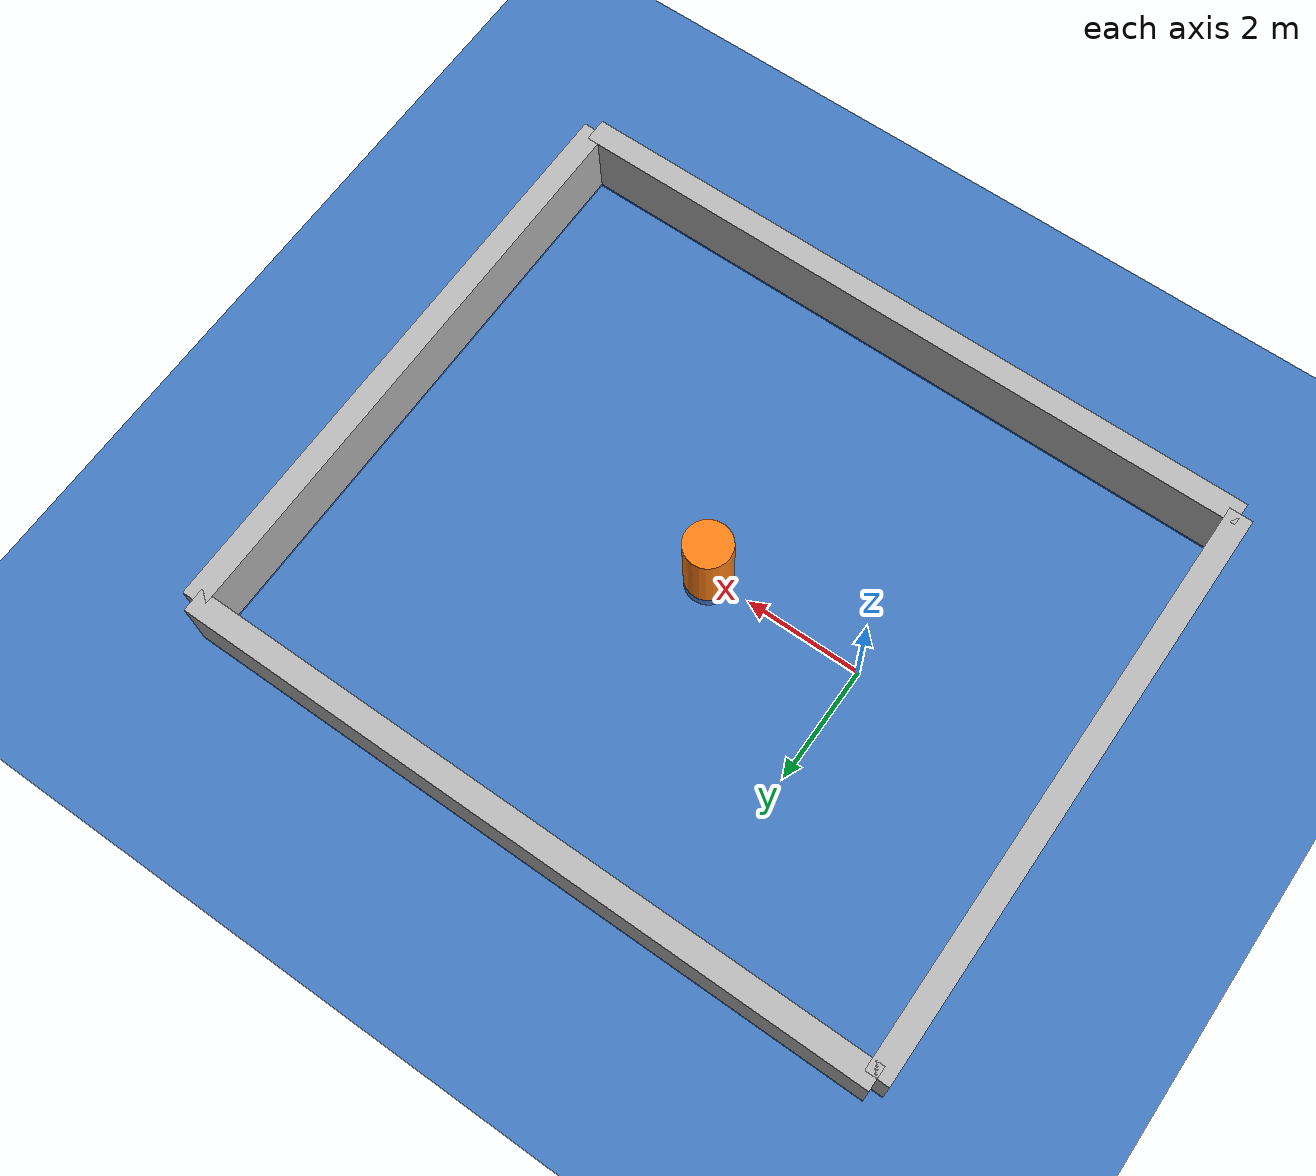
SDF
<?xml version="1.0"?>
<sdf version="1.10">
  <world name="collision_avoidance_arena">
    <plugin filename="gz-sim-physics-system" name="gz::sim::systems::Physics"/>
    <plugin filename="gz-sim-user-commands-system" name="gz::sim::systems::UserCommands"/>
    <plugin filename="gz-sim-scene-broadcaster-system" name="gz::sim::systems::SceneBroadcaster"/>
    <plugin filename="gz-sim-sensors-system" name="gz::sim::systems::Sensors">
      <render_engine>ogre2</render_engine>
    </plugin>
    <plugin filename="gz-sim-imu-system" name="gz::sim::systems::Imu"/>
    <plugin filename="gz-sim-navsat-system" name="gz::sim::systems::NavSat"/>
    <plugin filename="gz-sim-magnetometer-system" name="gz::sim::systems::Magnetometer"/>

    <physics type="ignored">
      <max_step_size>0.004</max_step_size>
      <real_time_factor>1.0</real_time_factor>
      <real_time_update_rate>250</real_time_update_rate>
    </physics>
    <gravity>0 0 -9.80665</gravity>
    <light type="directional" name="sun">
      <pose>50 0 150 0 0 0</pose>
      <diffuse>1 1 1 1</diffuse>
      <specular>0.1 0.1 0.1 1</specular>
      <direction>0.3 0.3 -1</direction>
      <cast_shadows>false</cast_shadows>
    </light>
    <include><uri>model://water_surface</uri></include>

    <!-- The campaign's direct start-goal chord crosses this exact cylinder. -->
    <model name="center_post">
      <pose>2.75 0 0.55 0 0 0</pose>
      <static>true</static>
      <link name="link">
        <collision name="collision">
          <geometry><cylinder><radius>0.40</radius><length>1.50</length></cylinder></geometry>
        </collision>
        <visual name="visual">
          <geometry><cylinder><radius>0.40</radius><length>1.50</length></cylinder></geometry>
          <material>
            <ambient>0.95 0.40 0.05 1</ambient>
            <diffuse>1.00 0.50 0.08 1</diffuse>
          </material>
        </visual>
      </link>
    </model>

    <!-- Nonblocking structures keep the lidar odometry problem observable. -->
    <model name="north_reference_wall">
      <pose>2.5 5.0 0.55 0 0 0</pose>
      <static>true</static>
      <link name="link">
        <collision name="collision"><geometry><box><size>12.0 0.4 1.2</size></box></geometry></collision>
        <visual name="visual"><geometry><box><size>12.0 0.4 1.2</size></box></geometry></visual>
      </link>
    </model>
    <model name="south_reference_wall">
      <pose>2.5 -5.0 0.55 0 0 0</pose>
      <static>true</static>
      <link name="link">
        <collision name="collision"><geometry><box><size>12.0 0.4 1.2</size></box></geometry></collision>
        <visual name="visual"><geometry><box><size>12.0 0.4 1.2</size></box></geometry></visual>
      </link>
    </model>
    <model name="west_reference_wall">
      <pose>-3.5 0 0.55 0 0 0</pose>
      <static>true</static>
      <link name="link">
        <collision name="collision"><geometry><box><size>0.4 10.0 1.2</size></box></geometry></collision>
        <visual name="visual"><geometry><box><size>0.4 10.0 1.2</size></box></geometry></visual>
      </link>
    </model>
    <model name="east_reference_wall">
      <pose>8.5 0 0.55 0 0 0</pose>
      <static>true</static>
      <link name="link">
        <collision name="collision"><geometry><box><size>0.4 10.0 1.2</size></box></geometry></collision>
        <visual name="visual"><geometry><box><size>0.4 10.0 1.2</size></box></geometry></visual>
      </link>
    </model>
  </world>
</sdf>

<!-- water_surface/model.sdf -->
<sdf version="1.6">
  <model name="water_surface">
    <static>true</static>

    <link name="water_surface_link">
      <visual name="water_surface_visual">
        <pose>0 0 -0.02 0 0 0</pose>
        <geometry>
          <box>
            <size>2000 2000 0.02</size>
          </box>
        </geometry>
        <material>
          <ambient>0.0 0.3 0.7 1.0</ambient>
          <diffuse>0.0 0.3 0.7 0.7</diffuse>
          <specular>0.1 0.1 0.1 1.0</specular>
        </material>
        <transparency>0.25</transparency>
      </visual>
    </link>
  </model>
</sdf>
